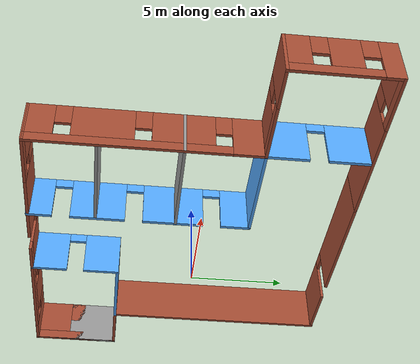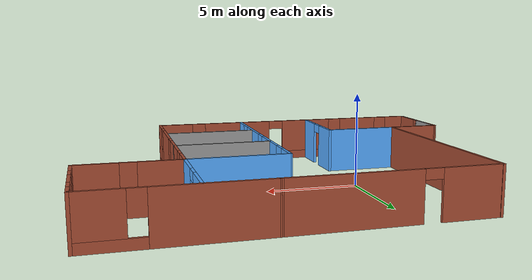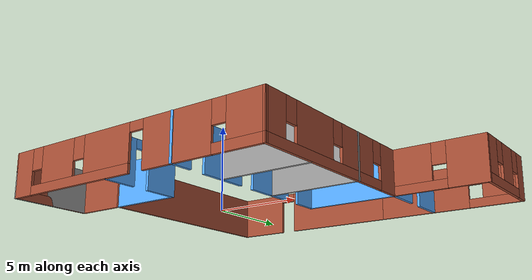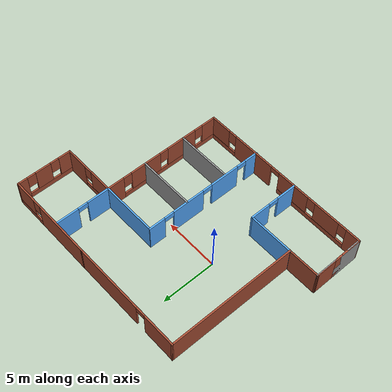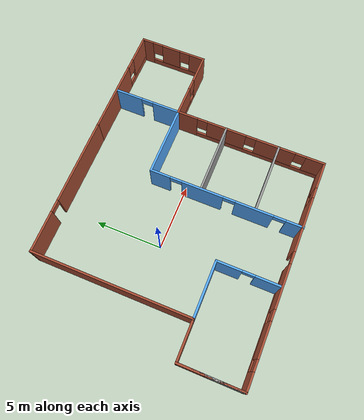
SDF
<?xml version='1.0'?>
<sdf version='1.6'>
  <model name='building'>
    <pose frame=''>3.89946 -0.587341 0 0 -0 0</pose>
    <link name='Wall_1'>
      <collision name='Wall_1_Collision'>
        <geometry>
          <box>
            <size>11.8964 0.15 2.5</size>
          </box>
        </geometry>
        <pose frame=''>0 0 1.25 0 -0 0</pose>
      </collision>
      <visual name='Wall_1_Visual'>
        <pose frame=''>0 0 1.25 0 -0 0</pose>
        <geometry>
          <box>
            <size>11.8964 0.15 2.5</size>
          </box>
        </geometry>
        <material>
          <script>
            <uri>file://media/materials/scripts/gazebo.material</uri>
            <name>Gazebo/Bricks</name>
          </script>
          <ambient>1 1 1 1</ambient>
        </material>
        <meta>
          <layer>0</layer>
        </meta>
      </visual>
      <pose frame=''>-7.94064 2.34108 0 0 0 -1.56889</pose>
    </link>
    <link name='Wall_12'>
      <pose frame=''>-2.75136 8.21079 0 0 0 -3.13796</pose>
      <visual name='Wall_12_Visual_0'>
        <pose frame=''>-1.99782 0 1.25 0 -0 0</pose>
        <geometry>
          <box>
            <size>6.55539 0.15 2.5</size>
          </box>
        </geometry>
        <material>
          <script>
            <uri>file://media/materials/scripts/gazebo.material</uri>
            <name>Gazebo/Bricks</name>
          </script>
          <ambient>1 1 1 1</ambient>
        </material>
        <meta>
          <layer>0</layer>
        </meta>
      </visual>
      <collision name='Wall_12_Collision_0'>
        <geometry>
          <box>
            <size>6.55539 0.15 2.5</size>
          </box>
        </geometry>
        <pose frame=''>-1.99782 0 1.25 0 -0 0</pose>
      </collision>
      <visual name='Wall_12_Visual_1'>
        <pose frame=''>3.72769 0 1.25 0 -0 0</pose>
        <geometry>
          <box>
            <size>3.09565 0.15 2.5</size>
          </box>
        </geometry>
        <material>
          <script>
            <uri>file://media/materials/scripts/gazebo.material</uri>
            <name>Gazebo/Bricks</name>
          </script>
          <ambient>1 1 1 1</ambient>
        </material>
        <meta>
          <layer>0</layer>
        </meta>
      </visual>
      <collision name='Wall_12_Collision_1'>
        <geometry>
          <box>
            <size>3.09565 0.15 2.5</size>
          </box>
        </geometry>
        <pose frame=''>3.72769 0 1.25 0 -0 0</pose>
      </collision>
      <visual name='Wall_12_Visual_2'>
        <pose frame=''>1.72987 0 2.25 0 -0 0</pose>
        <geometry>
          <box>
            <size>0.9 0.15 0.5</size>
          </box>
        </geometry>
        <material>
          <script>
            <uri>file://media/materials/scripts/gazebo.material</uri>
            <name>Gazebo/Bricks</name>
          </script>
          <ambient>1 1 1 1</ambient>
        </material>
        <meta>
          <layer>0</layer>
        </meta>
      </visual>
      <collision name='Wall_12_Collision_2'>
        <geometry>
          <box>
            <size>0.9 0.15 0.5</size>
          </box>
        </geometry>
        <pose frame=''>1.72987 0 2.25 0 -0 0</pose>
      </collision>
    </link>
    <link name='Wall_16'>
      <pose frame=''>6.62409 8.22968 0 0 -0 0</pose>
      <visual name='Wall_16_Visual_0'>
        <pose frame=''>-1.51306 0 1.25 0 -0 0</pose>
        <geometry>
          <box>
            <size>5.47388 0.15 2.5</size>
          </box>
        </geometry>
        <material>
          <script>
            <uri>file://media/materials/scripts/gazebo.material</uri>
            <name>Gazebo/Bricks</name>
          </script>
          <ambient>1 1 1 1</ambient>
        </material>
        <meta>
          <layer>0</layer>
        </meta>
      </visual>
      <collision name='Wall_16_Collision_0'>
        <geometry>
          <box>
            <size>5.47388 0.15 2.5</size>
          </box>
        </geometry>
        <pose frame=''>-1.51306 0 1.25 0 -0 0</pose>
      </collision>
      <visual name='Wall_16_Visual_1'>
        <pose frame=''>2.73694 0 0.25 0 -0 0</pose>
        <geometry>
          <box>
            <size>3.02612 0.15 0.5</size>
          </box>
        </geometry>
        <material>
          <script>
            <uri>file://media/materials/scripts/gazebo.material</uri>
            <name>Gazebo/Bricks</name>
          </script>
          <ambient>1 1 1 1</ambient>
        </material>
        <meta>
          <layer>0</layer>
        </meta>
      </visual>
      <collision name='Wall_16_Collision_1'>
        <geometry>
          <box>
            <size>3.02612 0.15 0.5</size>
          </box>
        </geometry>
        <pose frame=''>2.73694 0 0.25 0 -0 0</pose>
      </collision>
      <visual name='Wall_16_Visual_2'>
        <pose frame=''>3.13694 0 1.5 0 -0 0</pose>
        <geometry>
          <box>
            <size>2.22612 0.15 2</size>
          </box>
        </geometry>
        <material>
          <script>
            <uri>file://media/materials/scripts/gazebo.material</uri>
            <name>Gazebo/Bricks</name>
          </script>
          <ambient>1 1 1 1</ambient>
        </material>
        <meta>
          <layer>0</layer>
        </meta>
      </visual>
      <collision name='Wall_16_Collision_2'>
        <geometry>
          <box>
            <size>2.22612 0.15 2</size>
          </box>
        </geometry>
        <pose frame=''>3.13694 0 1.5 0 -0 0</pose>
      </collision>
      <visual name='Wall_16_Visual_3'>
        <pose frame=''>1.62388 0 1.9 0 -0 0</pose>
        <geometry>
          <box>
            <size>0.8 0.15 1.2</size>
          </box>
        </geometry>
        <material>
          <script>
            <uri>file://media/materials/scripts/gazebo.material</uri>
            <name>Gazebo/Bricks</name>
          </script>
          <ambient>1 1 1 1</ambient>
        </material>
        <meta>
          <layer>0</layer>
        </meta>
      </visual>
      <collision name='Wall_16_Collision_3'>
        <geometry>
          <box>
            <size>0.8 0.15 1.2</size>
          </box>
        </geometry>
        <pose frame=''>1.62388 0 1.9 0 -0 0</pose>
      </collision>
    </link>
    <link name='Wall_17'>
      <pose frame=''>10.7991 5.67968 0 0 0 -1.5708</pose>
      <visual name='Wall_17_Visual_0'>
        <pose frame=''>-2.16263 0 1.25 0 -0 0</pose>
        <geometry>
          <box>
            <size>0.924747 0.15 2.5</size>
          </box>
        </geometry>
        <material>
          <script>
            <uri>file://media/materials/scripts/gazebo.material</uri>
            <name>Gazebo/Bricks</name>
          </script>
          <ambient>1 1 1 1</ambient>
        </material>
        <meta>
          <layer>0</layer>
        </meta>
      </visual>
      <collision name='Wall_17_Collision_0'>
        <geometry>
          <box>
            <size>0.924747 0.15 2.5</size>
          </box>
        </geometry>
        <pose frame=''>-2.16263 0 1.25 0 -0 0</pose>
      </collision>
      <visual name='Wall_17_Visual_1'>
        <pose frame=''>0.462374 0 0.25 0 -0 0</pose>
        <geometry>
          <box>
            <size>4.32525 0.15 0.5</size>
          </box>
        </geometry>
        <material>
          <script>
            <uri>file://media/materials/scripts/gazebo.material</uri>
            <name>Gazebo/Bricks</name>
          </script>
          <ambient>1 1 1 1</ambient>
        </material>
        <meta>
          <layer>0</layer>
        </meta>
      </visual>
      <collision name='Wall_17_Collision_1'>
        <geometry>
          <box>
            <size>4.32525 0.15 0.5</size>
          </box>
        </geometry>
        <pose frame=''>0.462374 0 0.25 0 -0 0</pose>
      </collision>
      <visual name='Wall_17_Visual_2'>
        <pose frame=''>-0.159998 0 1.5 0 -0 0</pose>
        <geometry>
          <box>
            <size>1.48051 0.15 2</size>
          </box>
        </geometry>
        <material>
          <script>
            <uri>file://media/materials/scripts/gazebo.material</uri>
            <name>Gazebo/Bricks</name>
          </script>
          <ambient>1 1 1 1</ambient>
        </material>
        <meta>
          <layer>0</layer>
        </meta>
      </visual>
      <collision name='Wall_17_Collision_2'>
        <geometry>
          <box>
            <size>1.48051 0.15 2</size>
          </box>
        </geometry>
        <pose frame=''>-0.159998 0 1.5 0 -0 0</pose>
      </collision>
      <visual name='Wall_17_Visual_3'>
        <pose frame=''>2.00263 0 1.5 0 -0 0</pose>
        <geometry>
          <box>
            <size>1.24474 0.15 2</size>
          </box>
        </geometry>
        <material>
          <script>
            <uri>file://media/materials/scripts/gazebo.material</uri>
            <name>Gazebo/Bricks</name>
          </script>
          <ambient>1 1 1 1</ambient>
        </material>
        <meta>
          <layer>0</layer>
        </meta>
      </visual>
      <collision name='Wall_17_Collision_3'>
        <geometry>
          <box>
            <size>1.24474 0.15 2</size>
          </box>
        </geometry>
        <pose frame=''>2.00263 0 1.5 0 -0 0</pose>
      </collision>
      <visual name='Wall_17_Visual_4'>
        <pose frame=''>-1.30025 0 1.9 0 -0 0</pose>
        <geometry>
          <box>
            <size>0.8 0.15 1.2</size>
          </box>
        </geometry>
        <material>
          <script>
            <uri>file://media/materials/scripts/gazebo.material</uri>
            <name>Gazebo/Bricks</name>
          </script>
          <ambient>1 1 1 1</ambient>
        </material>
        <meta>
          <layer>0</layer>
        </meta>
      </visual>
      <collision name='Wall_17_Collision_4'>
        <geometry>
          <box>
            <size>0.8 0.15 1.2</size>
          </box>
        </geometry>
        <pose frame=''>-1.30025 0 1.9 0 -0 0</pose>
      </collision>
      <visual name='Wall_17_Visual_5'>
        <pose frame=''>0.980257 0 1.9 0 -0 0</pose>
        <geometry>
          <box>
            <size>0.8 0.15 1.2</size>
          </box>
        </geometry>
        <material>
          <script>
            <uri>file://media/materials/scripts/gazebo.material</uri>
            <name>Gazebo/Bricks</name>
          </script>
          <ambient>1 1 1 1</ambient>
        </material>
        <meta>
          <layer>0</layer>
        </meta>
      </visual>
      <collision name='Wall_17_Collision_5'>
        <geometry>
          <box>
            <size>0.8 0.15 1.2</size>
          </box>
        </geometry>
        <pose frame=''>0.980257 0 1.9 0 -0 0</pose>
      </collision>
    </link>
    <link name='Wall_18'>
      <pose frame=''>8.24932 3.12951 0 0 0 -3.14153</pose>
      <visual name='Wall_18_Visual_0'>
        <pose frame=''>-1.5343 0 1.25 0 -0 0</pose>
        <geometry>
          <box>
            <size>2.18141 0.15 2.5</size>
          </box>
        </geometry>
        <material>
          <script>
            <uri>file://media/materials/scripts/gazebo.material</uri>
            <name>Gazebo/Bricks</name>
          </script>
          <ambient>1 1 1 1</ambient>
        </material>
        <meta>
          <layer>0</layer>
        </meta>
      </visual>
      <collision name='Wall_18_Collision_0'>
        <geometry>
          <box>
            <size>2.18141 0.15 2.5</size>
          </box>
        </geometry>
        <pose frame=''>-1.5343 0 1.25 0 -0 0</pose>
      </collision>
      <visual name='Wall_18_Visual_1'>
        <pose frame=''>1.0907 0 0.25 0 -0 0</pose>
        <geometry>
          <box>
            <size>3.06859 0.15 0.5</size>
          </box>
        </geometry>
        <material>
          <script>
            <uri>file://media/materials/scripts/gazebo.material</uri>
            <name>Gazebo/Bricks</name>
          </script>
          <ambient>1 1 1 1</ambient>
        </material>
        <meta>
          <layer>0</layer>
        </meta>
      </visual>
      <collision name='Wall_18_Collision_1'>
        <geometry>
          <box>
            <size>3.06859 0.15 0.5</size>
          </box>
        </geometry>
        <pose frame=''>1.0907 0 0.25 0 -0 0</pose>
      </collision>
      <visual name='Wall_18_Visual_2'>
        <pose frame=''>1.4907 0 1.5 0 -0 0</pose>
        <geometry>
          <box>
            <size>2.26859 0.15 2</size>
          </box>
        </geometry>
        <material>
          <script>
            <uri>file://media/materials/scripts/gazebo.material</uri>
            <name>Gazebo/Bricks</name>
          </script>
          <ambient>1 1 1 1</ambient>
        </material>
        <meta>
          <layer>0</layer>
        </meta>
      </visual>
      <collision name='Wall_18_Collision_2'>
        <geometry>
          <box>
            <size>2.26859 0.15 2</size>
          </box>
        </geometry>
        <pose frame=''>1.4907 0 1.5 0 -0 0</pose>
      </collision>
      <visual name='Wall_18_Visual_3'>
        <pose frame=''>-0.043591 0 1.9 0 -0 0</pose>
        <geometry>
          <box>
            <size>0.8 0.15 1.2</size>
          </box>
        </geometry>
        <material>
          <script>
            <uri>file://media/materials/scripts/gazebo.material</uri>
            <name>Gazebo/Bricks</name>
          </script>
          <ambient>1 1 1 1</ambient>
        </material>
        <meta>
          <layer>0</layer>
        </meta>
      </visual>
      <collision name='Wall_18_Collision_3'>
        <geometry>
          <box>
            <size>0.8 0.15 1.2</size>
          </box>
        </geometry>
        <pose frame=''>-0.043591 0 1.9 0 -0 0</pose>
      </collision>
    </link>
    <link name='Wall_19'>
      <pose frame=''>5.69932 -2.54549 0 0 0 -1.57084</pose>
      <visual name='Wall_19_Visual_0'>
        <pose frame=''>-4.93786 0 1.25 0 -0 0</pose>
        <geometry>
          <box>
            <size>1.62428 0.15 2.5</size>
          </box>
        </geometry>
        <material>
          <script>
            <uri>file://media/materials/scripts/gazebo.material</uri>
            <name>Gazebo/Bricks</name>
          </script>
          <ambient>1 1 1 1</ambient>
        </material>
        <meta>
          <layer>0</layer>
        </meta>
      </visual>
      <collision name='Wall_19_Collision_0'>
        <geometry>
          <box>
            <size>1.62428 0.15 2.5</size>
          </box>
        </geometry>
        <pose frame=''>-4.93786 0 1.25 0 -0 0</pose>
      </collision>
      <visual name='Wall_19_Visual_1'>
        <pose frame=''>0.812141 0 0.25 0 -0 0</pose>
        <geometry>
          <box>
            <size>9.87572 0.15 0.5</size>
          </box>
        </geometry>
        <material>
          <script>
            <uri>file://media/materials/scripts/gazebo.material</uri>
            <name>Gazebo/Bricks</name>
          </script>
          <ambient>1 1 1 1</ambient>
        </material>
        <meta>
          <layer>0</layer>
        </meta>
      </visual>
      <collision name='Wall_19_Collision_1'>
        <geometry>
          <box>
            <size>9.87572 0.15 0.5</size>
          </box>
        </geometry>
        <pose frame=''>0.812141 0 0.25 0 -0 0</pose>
      </collision>
      <visual name='Wall_19_Visual_2'>
        <pose frame=''>-1.81026 0 1.5 0 -0 0</pose>
        <geometry>
          <box>
            <size>3.03092 0.15 2</size>
          </box>
        </geometry>
        <material>
          <script>
            <uri>file://media/materials/scripts/gazebo.material</uri>
            <name>Gazebo/Bricks</name>
          </script>
          <ambient>1 1 1 1</ambient>
        </material>
        <meta>
          <layer>0</layer>
        </meta>
      </visual>
      <collision name='Wall_19_Collision_2'>
        <geometry>
          <box>
            <size>3.03092 0.15 2</size>
          </box>
        </geometry>
        <pose frame=''>-1.81026 0 1.5 0 -0 0</pose>
      </collision>
      <visual name='Wall_19_Visual_3'>
        <pose frame=''>2.0078 0 1.5 0 -0 0</pose>
        <geometry>
          <box>
            <size>3.00521 0.15 2</size>
          </box>
        </geometry>
        <material>
          <script>
            <uri>file://media/materials/scripts/gazebo.material</uri>
            <name>Gazebo/Bricks</name>
          </script>
          <ambient>1 1 1 1</ambient>
        </material>
        <meta>
          <layer>0</layer>
        </meta>
      </visual>
      <collision name='Wall_19_Collision_3'>
        <geometry>
          <box>
            <size>3.00521 0.15 2</size>
          </box>
        </geometry>
        <pose frame=''>2.0078 0 1.5 0 -0 0</pose>
      </collision>
      <visual name='Wall_19_Visual_4'>
        <pose frame=''>5.0302 0 1.5 0 -0 0</pose>
        <geometry>
          <box>
            <size>1.43959 0.15 2</size>
          </box>
        </geometry>
        <material>
          <script>
            <uri>file://media/materials/scripts/gazebo.material</uri>
            <name>Gazebo/Bricks</name>
          </script>
          <ambient>1 1 1 1</ambient>
        </material>
        <meta>
          <layer>0</layer>
        </meta>
      </visual>
      <collision name='Wall_19_Collision_4'>
        <geometry>
          <box>
            <size>1.43959 0.15 2</size>
          </box>
        </geometry>
        <pose frame=''>5.0302 0 1.5 0 -0 0</pose>
      </collision>
      <visual name='Wall_19_Visual_5'>
        <pose frame=''>-3.72572 0 1.9 0 -0 0</pose>
        <geometry>
          <box>
            <size>0.8 0.15 1.2</size>
          </box>
        </geometry>
        <material>
          <script>
            <uri>file://media/materials/scripts/gazebo.material</uri>
            <name>Gazebo/Bricks</name>
          </script>
          <ambient>1 1 1 1</ambient>
        </material>
        <meta>
          <layer>0</layer>
        </meta>
      </visual>
      <collision name='Wall_19_Collision_5'>
        <geometry>
          <box>
            <size>0.8 0.15 1.2</size>
          </box>
        </geometry>
        <pose frame=''>-3.72572 0 1.9 0 -0 0</pose>
      </collision>
      <visual name='Wall_19_Visual_6'>
        <pose frame=''>0.105201 0 1.9 0 -0 0</pose>
        <geometry>
          <box>
            <size>0.8 0.15 1.2</size>
          </box>
        </geometry>
        <material>
          <script>
            <uri>file://media/materials/scripts/gazebo.material</uri>
            <name>Gazebo/Bricks</name>
          </script>
          <ambient>1 1 1 1</ambient>
        </material>
        <meta>
          <layer>0</layer>
        </meta>
      </visual>
      <collision name='Wall_19_Collision_6'>
        <geometry>
          <box>
            <size>0.8 0.15 1.2</size>
          </box>
        </geometry>
        <pose frame=''>0.105201 0 1.9 0 -0 0</pose>
      </collision>
      <visual name='Wall_19_Visual_7'>
        <pose frame=''>3.91041 0 1.9 0 -0 0</pose>
        <geometry>
          <box>
            <size>0.8 0.15 1.2</size>
          </box>
        </geometry>
        <material>
          <script>
            <uri>file://media/materials/scripts/gazebo.material</uri>
            <name>Gazebo/Bricks</name>
          </script>
          <ambient>1 1 1 1</ambient>
        </material>
        <meta>
          <layer>0</layer>
        </meta>
      </visual>
      <collision name='Wall_19_Collision_7'>
        <geometry>
          <box>
            <size>0.8 0.15 1.2</size>
          </box>
        </geometry>
        <pose frame=''>3.91041 0 1.9 0 -0 0</pose>
      </collision>
    </link>
    <link name='Wall_2'>
      <collision name='Wall_2_Collision'>
        <geometry>
          <box>
            <size>3 0.15 2.5</size>
          </box>
        </geometry>
        <pose frame=''>0 0 1.25 0 -0 0</pose>
      </collision>
      <visual name='Wall_2_Visual'>
        <pose frame=''>0 0 1.25 0 -0 0</pose>
        <geometry>
          <box>
            <size>3 0.15 2.5</size>
          </box>
        </geometry>
        <material>
          <script>
            <uri>file://media/materials/scripts/gazebo.material</uri>
            <name>Gazebo/Bricks</name>
          </script>
          <ambient>1 1 1 1</ambient>
        </material>
        <meta>
          <layer>0</layer>
        </meta>
      </visual>
      <pose frame=''>-9.3739 -3.5321 0 0 -0 3.14159</pose>
    </link>
    <link name='Wall_22'>
      <pose frame=''>-2.53692 -8.17313 0 0 0 -0.005729</pose>
      <visual name='Wall_22_Visual_0'>
        <pose frame=''>-7.62682 0 1.25 0 -0 0</pose>
        <geometry>
          <box>
            <size>1.36865 0.15 2.5</size>
          </box>
        </geometry>
        <material>
          <script>
            <uri>file://media/materials/scripts/gazebo.material</uri>
            <name>Gazebo/Bricks</name>
          </script>
          <ambient>1 1 1 1</ambient>
        </material>
        <meta>
          <layer>0</layer>
        </meta>
      </visual>
      <collision name='Wall_22_Collision_0'>
        <geometry>
          <box>
            <size>1.36865 0.15 2.5</size>
          </box>
        </geometry>
        <pose frame=''>-7.62682 0 1.25 0 -0 0</pose>
      </collision>
      <visual name='Wall_22_Visual_1'>
        <pose frame=''>3.33344 0 1.25 0 -0 0</pose>
        <geometry>
          <box>
            <size>4.17211 0.15 2.5</size>
          </box>
        </geometry>
        <material>
          <script>
            <uri>file://media/materials/scripts/gazebo.material</uri>
            <name>Gazebo/Bricks</name>
          </script>
          <ambient>1 1 1 1</ambient>
        </material>
        <meta>
          <layer>0</layer>
        </meta>
      </visual>
      <collision name='Wall_22_Collision_1'>
        <geometry>
          <box>
            <size>4.17211 0.15 2.5</size>
          </box>
        </geometry>
        <pose frame=''>3.33344 0 1.25 0 -0 0</pose>
      </collision>
      <visual name='Wall_22_Visual_2'>
        <pose frame=''>-3.29755 0 0.25 0 -0 0</pose>
        <geometry>
          <box>
            <size>7.28989 0.15 0.5</size>
          </box>
        </geometry>
        <material>
          <script>
            <uri>file://media/materials/scripts/gazebo.material</uri>
            <name>Gazebo/Bricks</name>
          </script>
          <ambient>1 1 1 1</ambient>
        </material>
        <meta>
          <layer>0</layer>
        </meta>
      </visual>
      <collision name='Wall_22_Collision_2'>
        <geometry>
          <box>
            <size>7.28989 0.15 0.5</size>
          </box>
        </geometry>
        <pose frame=''>-3.29755 0 0.25 0 -0 0</pose>
      </collision>
      <visual name='Wall_22_Visual_3'>
        <pose frame=''>6.86532 0 0.25 0 -0 0</pose>
        <geometry>
          <box>
            <size>2.89165 0.15 0.5</size>
          </box>
        </geometry>
        <material>
          <script>
            <uri>file://media/materials/scripts/gazebo.material</uri>
            <name>Gazebo/Bricks</name>
          </script>
          <ambient>1 1 1 1</ambient>
        </material>
        <meta>
          <layer>0</layer>
        </meta>
      </visual>
      <collision name='Wall_22_Collision_3'>
        <geometry>
          <box>
            <size>2.89165 0.15 0.5</size>
          </box>
        </geometry>
        <pose frame=''>6.86532 0 0.25 0 -0 0</pose>
      </collision>
      <visual name='Wall_22_Visual_4'>
        <pose frame=''>-4.89902 0 1.5 0 -0 0</pose>
        <geometry>
          <box>
            <size>2.48695 0.15 2</size>
          </box>
        </geometry>
        <material>
          <script>
            <uri>file://media/materials/scripts/gazebo.material</uri>
            <name>Gazebo/Bricks</name>
          </script>
          <ambient>1 1 1 1</ambient>
        </material>
        <meta>
          <layer>0</layer>
        </meta>
      </visual>
      <collision name='Wall_22_Collision_4'>
        <geometry>
          <box>
            <size>2.48695 0.15 2</size>
          </box>
        </geometry>
        <pose frame=''>-4.89902 0 1.5 0 -0 0</pose>
      </collision>
      <visual name='Wall_22_Visual_5'>
        <pose frame=''>-1.25408 0 1.5 0 -0 0</pose>
        <geometry>
          <box>
            <size>3.20294 0.15 2</size>
          </box>
        </geometry>
        <material>
          <script>
            <uri>file://media/materials/scripts/gazebo.material</uri>
            <name>Gazebo/Bricks</name>
          </script>
          <ambient>1 1 1 1</ambient>
        </material>
        <meta>
          <layer>0</layer>
        </meta>
      </visual>
      <collision name='Wall_22_Collision_5'>
        <geometry>
          <box>
            <size>3.20294 0.15 2</size>
          </box>
        </geometry>
        <pose frame=''>-1.25408 0 1.5 0 -0 0</pose>
      </collision>
      <visual name='Wall_22_Visual_6'>
        <pose frame=''>-1.25408 0 1.5 0 -0 0</pose>
        <geometry>
          <box>
            <size>3.20294 0.15 2</size>
          </box>
        </geometry>
        <material>
          <script>
            <uri>file://media/materials/scripts/gazebo.material</uri>
            <name>Gazebo/Bricks</name>
          </script>
          <ambient>1 1 1 1</ambient>
        </material>
        <meta>
          <layer>0</layer>
        </meta>
      </visual>
      <collision name='Wall_22_Collision_6'>
        <geometry>
          <box>
            <size>3.20294 0.15 2</size>
          </box>
        </geometry>
        <pose frame=''>-1.25408 0 1.5 0 -0 0</pose>
      </collision>
      <visual name='Wall_22_Visual_7'>
        <pose frame=''>7.26532 0 1.5 0 -0 0</pose>
        <geometry>
          <box>
            <size>2.09165 0.15 2</size>
          </box>
        </geometry>
        <material>
          <script>
            <uri>file://media/materials/scripts/gazebo.material</uri>
            <name>Gazebo/Bricks</name>
          </script>
          <ambient>1 1 1 1</ambient>
        </material>
        <meta>
          <layer>0</layer>
        </meta>
      </visual>
      <collision name='Wall_22_Collision_7'>
        <geometry>
          <box>
            <size>2.09165 0.15 2</size>
          </box>
        </geometry>
        <pose frame=''>7.26532 0 1.5 0 -0 0</pose>
      </collision>
      <visual name='Wall_22_Visual_8'>
        <pose frame=''>-6.5425 0 1.9 0 -0 0</pose>
        <geometry>
          <box>
            <size>0.8 0.15 1.2</size>
          </box>
        </geometry>
        <material>
          <script>
            <uri>file://media/materials/scripts/gazebo.material</uri>
            <name>Gazebo/Bricks</name>
          </script>
          <ambient>1 1 1 1</ambient>
        </material>
        <meta>
          <layer>0</layer>
        </meta>
      </visual>
      <collision name='Wall_22_Collision_8'>
        <geometry>
          <box>
            <size>0.8 0.15 1.2</size>
          </box>
        </geometry>
        <pose frame=''>-6.5425 0 1.9 0 -0 0</pose>
      </collision>
      <visual name='Wall_22_Visual_9'>
        <pose frame=''>5.8195 0 1.9 0 -0 0</pose>
        <geometry>
          <box>
            <size>0.8 0.15 1.2</size>
          </box>
        </geometry>
        <material>
          <script>
            <uri>file://media/materials/scripts/gazebo.material</uri>
            <name>Gazebo/Bricks</name>
          </script>
          <ambient>1 1 1 1</ambient>
        </material>
        <meta>
          <layer>0</layer>
        </meta>
      </visual>
      <collision name='Wall_22_Collision_9'>
        <geometry>
          <box>
            <size>0.8 0.15 1.2</size>
          </box>
        </geometry>
        <pose frame=''>5.8195 0 1.9 0 -0 0</pose>
      </collision>
      <visual name='Wall_22_Visual_10'>
        <pose frame=''>-3.25555 0 1.9 0 -0 0</pose>
        <geometry>
          <box>
            <size>0.8 0.15 1.2</size>
          </box>
        </geometry>
        <material>
          <script>
            <uri>file://media/materials/scripts/gazebo.material</uri>
            <name>Gazebo/Bricks</name>
          </script>
          <ambient>1 1 1 1</ambient>
        </material>
        <meta>
          <layer>0</layer>
        </meta>
      </visual>
      <collision name='Wall_22_Collision_10'>
        <geometry>
          <box>
            <size>0.8 0.15 1.2</size>
          </box>
        </geometry>
        <pose frame=''>-3.25555 0 1.9 0 -0 0</pose>
      </collision>
      <visual name='Wall_22_Visual_11'>
        <pose frame=''>0.79739 0 2.25 0 -0 0</pose>
        <geometry>
          <box>
            <size>0.9 0.15 0.5</size>
          </box>
        </geometry>
        <material>
          <script>
            <uri>file://media/materials/scripts/gazebo.material</uri>
            <name>Gazebo/Bricks</name>
          </script>
          <ambient>1 1 1 1</ambient>
        </material>
        <meta>
          <layer>0</layer>
        </meta>
      </visual>
      <collision name='Wall_22_Collision_11'>
        <geometry>
          <box>
            <size>0.9 0.15 0.5</size>
          </box>
        </geometry>
        <pose frame=''>0.79739 0 2.25 0 -0 0</pose>
      </collision>
      <visual name='Wall_22_Visual_12'>
        <pose frame=''>0.79739 0 2.25 0 -0 0</pose>
        <geometry>
          <box>
            <size>0.9 0.15 0.5</size>
          </box>
        </geometry>
        <material>
          <script>
            <uri>file://media/materials/scripts/gazebo.material</uri>
            <name>Gazebo/Bricks</name>
          </script>
          <ambient>1 1 1 1</ambient>
        </material>
        <meta>
          <layer>0</layer>
        </meta>
      </visual>
      <collision name='Wall_22_Collision_12'>
        <geometry>
          <box>
            <size>0.9 0.15 0.5</size>
          </box>
        </geometry>
        <pose frame=''>0.79739 0 2.25 0 -0 0</pose>
      </collision>
    </link>
    <link name='Wall_24'>
      <collision name='Wall_24_Collision'>
        <geometry>
          <box>
            <size>4.25 0.15 2.5</size>
          </box>
        </geometry>
        <pose frame=''>0 0 1.25 0 -0 0</pose>
      </collision>
      <visual name='Wall_24_Visual'>
        <pose frame=''>0 0 1.25 0 -0 0</pose>
        <geometry>
          <box>
            <size>4.25 0.15 2.5</size>
          </box>
        </geometry>
        <material>
          <script>
            <uri>file://media/materials/scripts/gazebo.material</uri>
            <name>Gazebo/Grey</name>
          </script>
          <ambient>0.333333 0.666667 1 1</ambient>
        </material>
        <meta>
          <layer>0</layer>
        </meta>
      </visual>
      <pose frame=''>-5.8989 -3.5321 0 0 -0 3.14159</pose>
    </link>
    <link name='Wall_26'>
      <pose frame=''>-3.8489 -5.8321 0 0 0 -1.5708</pose>
      <visual name='Wall_26_Visual_0'>
        <pose frame=''>-1.41297 0 1.25 0 -0 0</pose>
        <geometry>
          <box>
            <size>1.92407 0.15 2.5</size>
          </box>
        </geometry>
        <material>
          <script>
            <uri>file://media/materials/scripts/gazebo.material</uri>
            <name>Gazebo/Grey</name>
          </script>
          <ambient>0.333333 0.666667 1 1</ambient>
        </material>
        <meta>
          <layer>0</layer>
        </meta>
      </visual>
      <collision name='Wall_26_Collision_0'>
        <geometry>
          <box>
            <size>1.92407 0.15 2.5</size>
          </box>
        </geometry>
        <pose frame=''>-1.41297 0 1.25 0 -0 0</pose>
      </collision>
      <visual name='Wall_26_Visual_1'>
        <pose frame=''>1.41203 0 1.25 0 -0 0</pose>
        <geometry>
          <box>
            <size>1.92593 0.15 2.5</size>
          </box>
        </geometry>
        <material>
          <script>
            <uri>file://media/materials/scripts/gazebo.material</uri>
            <name>Gazebo/Grey</name>
          </script>
          <ambient>0.333333 0.666667 1 1</ambient>
        </material>
        <meta>
          <layer>0</layer>
        </meta>
      </visual>
      <collision name='Wall_26_Collision_1'>
        <geometry>
          <box>
            <size>1.92593 0.15 2.5</size>
          </box>
        </geometry>
        <pose frame=''>1.41203 0 1.25 0 -0 0</pose>
      </collision>
      <visual name='Wall_26_Visual_2'>
        <pose frame=''>-0.000932 0 2.25 0 -0 0</pose>
        <geometry>
          <box>
            <size>0.9 0.15 0.5</size>
          </box>
        </geometry>
        <material>
          <script>
            <uri>file://media/materials/scripts/gazebo.material</uri>
            <name>Gazebo/Grey</name>
          </script>
          <ambient>0.333333 0.666667 1 1</ambient>
        </material>
        <meta>
          <layer>0</layer>
        </meta>
      </visual>
      <collision name='Wall_26_Collision_2'>
        <geometry>
          <box>
            <size>0.9 0.15 0.5</size>
          </box>
        </geometry>
        <pose frame=''>-0.000932 0 2.25 0 -0 0</pose>
      </collision>
    </link>
    <link name='Wall_29'>
      <pose frame=''>5.69954 5.67934 0 0 -0 1.5708</pose>
      <visual name='Wall_29_Visual_0'>
        <pose frame=''>-1.54693 0 1.25 0 -0 0</pose>
        <geometry>
          <box>
            <size>2.15613 0.15 2.5</size>
          </box>
        </geometry>
        <material>
          <script>
            <uri>file://media/materials/scripts/gazebo.material</uri>
            <name>Gazebo/Grey</name>
          </script>
          <ambient>0.333333 0.666667 1 1</ambient>
        </material>
        <meta>
          <layer>0</layer>
        </meta>
      </visual>
      <collision name='Wall_29_Collision_0'>
        <geometry>
          <box>
            <size>2.15613 0.15 2.5</size>
          </box>
        </geometry>
        <pose frame=''>-1.54693 0 1.25 0 -0 0</pose>
      </collision>
      <visual name='Wall_29_Visual_1'>
        <pose frame=''>1.52807 0 1.25 0 -0 0</pose>
        <geometry>
          <box>
            <size>2.19387 0.15 2.5</size>
          </box>
        </geometry>
        <material>
          <script>
            <uri>file://media/materials/scripts/gazebo.material</uri>
            <name>Gazebo/Grey</name>
          </script>
          <ambient>0.333333 0.666667 1 1</ambient>
        </material>
        <meta>
          <layer>0</layer>
        </meta>
      </visual>
      <collision name='Wall_29_Collision_1'>
        <geometry>
          <box>
            <size>2.19387 0.15 2.5</size>
          </box>
        </geometry>
        <pose frame=''>1.52807 0 1.25 0 -0 0</pose>
      </collision>
      <visual name='Wall_29_Visual_2'>
        <pose frame=''>-0.018866 0 2.25 0 -0 0</pose>
        <geometry>
          <box>
            <size>0.9 0.15 0.5</size>
          </box>
        </geometry>
        <material>
          <script>
            <uri>file://media/materials/scripts/gazebo.material</uri>
            <name>Gazebo/Grey</name>
          </script>
          <ambient>0.333333 0.666667 1 1</ambient>
        </material>
        <meta>
          <layer>0</layer>
        </meta>
      </visual>
      <collision name='Wall_29_Collision_2'>
        <geometry>
          <box>
            <size>0.9 0.15 0.5</size>
          </box>
        </geometry>
        <pose frame=''>-0.018866 0 2.25 0 -0 0</pose>
      </collision>
    </link>
    <link name='Wall_33'>
      <pose frame=''>0.558093 -2.55495 0 0 -0 1.5708</pose>
      <visual name='Wall_33_Visual_0'>
        <pose frame=''>-5.08902 0 1.25 0 -0 0</pose>
        <geometry>
          <box>
            <size>1.32197 0.15 2.5</size>
          </box>
        </geometry>
        <material>
          <script>
            <uri>file://media/materials/scripts/gazebo.material</uri>
            <name>Gazebo/Grey</name>
          </script>
          <ambient>0.333333 0.666667 1 1</ambient>
        </material>
        <meta>
          <layer>0</layer>
        </meta>
      </visual>
      <collision name='Wall_33_Collision_0'>
        <geometry>
          <box>
            <size>1.32197 0.15 2.5</size>
          </box>
        </geometry>
        <pose frame=''>-5.08902 0 1.25 0 -0 0</pose>
      </collision>
      <visual name='Wall_33_Visual_1'>
        <pose frame=''>-2.12679 0 1.25 0 -0 0</pose>
        <geometry>
          <box>
            <size>2.80247 0.15 2.5</size>
          </box>
        </geometry>
        <material>
          <script>
            <uri>file://media/materials/scripts/gazebo.material</uri>
            <name>Gazebo/Grey</name>
          </script>
          <ambient>0.333333 0.666667 1 1</ambient>
        </material>
        <meta>
          <layer>0</layer>
        </meta>
      </visual>
      <collision name='Wall_33_Collision_1'>
        <geometry>
          <box>
            <size>2.80247 0.15 2.5</size>
          </box>
        </geometry>
        <pose frame=''>-2.12679 0 1.25 0 -0 0</pose>
      </collision>
      <visual name='Wall_33_Visual_2'>
        <pose frame=''>1.72995 0 1.25 0 -0 0</pose>
        <geometry>
          <box>
            <size>3.11102 0.15 2.5</size>
          </box>
        </geometry>
        <material>
          <script>
            <uri>file://media/materials/scripts/gazebo.material</uri>
            <name>Gazebo/Grey</name>
          </script>
          <ambient>0.333333 0.666667 1 1</ambient>
        </material>
        <meta>
          <layer>0</layer>
        </meta>
      </visual>
      <collision name='Wall_33_Collision_2'>
        <geometry>
          <box>
            <size>3.11102 0.15 2.5</size>
          </box>
        </geometry>
        <pose frame=''>1.72995 0 1.25 0 -0 0</pose>
      </collision>
      <visual name='Wall_33_Visual_3'>
        <pose frame=''>4.96773 0 1.25 0 -0 0</pose>
        <geometry>
          <box>
            <size>1.56454 0.15 2.5</size>
          </box>
        </geometry>
        <material>
          <script>
            <uri>file://media/materials/scripts/gazebo.material</uri>
            <name>Gazebo/Grey</name>
          </script>
          <ambient>0.333333 0.666667 1 1</ambient>
        </material>
        <meta>
          <layer>0</layer>
        </meta>
      </visual>
      <collision name='Wall_33_Collision_3'>
        <geometry>
          <box>
            <size>1.56454 0.15 2.5</size>
          </box>
        </geometry>
        <pose frame=''>4.96773 0 1.25 0 -0 0</pose>
      </collision>
      <visual name='Wall_33_Visual_4'>
        <pose frame=''>-3.97803 0 2.25 0 -0 0</pose>
        <geometry>
          <box>
            <size>0.9 0.15 0.5</size>
          </box>
        </geometry>
        <material>
          <script>
            <uri>file://media/materials/scripts/gazebo.material</uri>
            <name>Gazebo/Grey</name>
          </script>
          <ambient>0.333333 0.666667 1 1</ambient>
        </material>
        <meta>
          <layer>0</layer>
        </meta>
      </visual>
      <collision name='Wall_33_Collision_4'>
        <geometry>
          <box>
            <size>0.9 0.15 0.5</size>
          </box>
        </geometry>
        <pose frame=''>-3.97803 0 2.25 0 -0 0</pose>
      </collision>
      <visual name='Wall_33_Visual_5'>
        <pose frame=''>-0.275557 0 2.25 0 -0 0</pose>
        <geometry>
          <box>
            <size>0.9 0.15 0.5</size>
          </box>
        </geometry>
        <material>
          <script>
            <uri>file://media/materials/scripts/gazebo.material</uri>
            <name>Gazebo/Grey</name>
          </script>
          <ambient>0.333333 0.666667 1 1</ambient>
        </material>
        <meta>
          <layer>0</layer>
        </meta>
      </visual>
      <collision name='Wall_33_Collision_5'>
        <geometry>
          <box>
            <size>0.9 0.15 0.5</size>
          </box>
        </geometry>
        <pose frame=''>-0.275557 0 2.25 0 -0 0</pose>
      </collision>
      <visual name='Wall_33_Visual_6'>
        <pose frame=''>3.73546 0 2.25 0 -0 0</pose>
        <geometry>
          <box>
            <size>0.9 0.15 0.5</size>
          </box>
        </geometry>
        <material>
          <script>
            <uri>file://media/materials/scripts/gazebo.material</uri>
            <name>Gazebo/Grey</name>
          </script>
          <ambient>0.333333 0.666667 1 1</ambient>
        </material>
        <meta>
          <layer>0</layer>
        </meta>
      </visual>
      <collision name='Wall_33_Collision_6'>
        <geometry>
          <box>
            <size>0.9 0.15 0.5</size>
          </box>
        </geometry>
        <pose frame=''>3.73546 0 2.25 0 -0 0</pose>
      </collision>
    </link>
    <link name='Wall_34'>
      <collision name='Wall_34_Collision'>
        <geometry>
          <box>
            <size>5.29101 0.15 2.5</size>
          </box>
        </geometry>
        <pose frame=''>0 0 1.25 0 -0 0</pose>
      </collision>
      <visual name='Wall_34_Visual'>
        <pose frame=''>0 0 1.25 0 -0 0</pose>
        <geometry>
          <box>
            <size>5.29101 0.15 2.5</size>
          </box>
        </geometry>
        <material>
          <script>
            <uri>file://media/materials/scripts/gazebo.material</uri>
            <name>Gazebo/Grey</name>
          </script>
          <ambient>0.333333 0.666667 1 1</ambient>
        </material>
        <meta>
          <layer>0</layer>
        </meta>
      </visual>
      <pose frame=''>3.12882 3.1247 0 0 -0 0.001807</pose>
    </link>
    <link name='Wall_36'>
      <collision name='Wall_36_Collision'>
        <geometry>
          <box>
            <size>5.25 0.15 2.5</size>
          </box>
        </geometry>
        <pose frame=''>0 0 1.25 0 -0 0</pose>
      </collision>
      <visual name='Wall_36_Visual'>
        <pose frame=''>0 0 1.25 0 -0 0</pose>
        <geometry>
          <box>
            <size>5.25 0.15 2.5</size>
          </box>
        </geometry>
        <material>
          <script>
            <uri>file://media/materials/scripts/gazebo.material</uri>
            <name>Gazebo/Grey</name>
          </script>
          <ambient>1 1 1 1</ambient>
        </material>
        <meta>
          <layer>0</layer>
        </meta>
      </visual>
      <pose frame=''>3.15952 -0.696442 0 0 -0 0</pose>
    </link>
    <link name='Wall_38'>
      <collision name='Wall_38_Collision'>
        <geometry>
          <box>
            <size>5.25 0.15 2.5</size>
          </box>
        </geometry>
        <pose frame=''>0 0 1.25 0 -0 0</pose>
      </collision>
      <visual name='Wall_38_Visual'>
        <pose frame=''>0 0 1.25 0 -0 0</pose>
        <geometry>
          <box>
            <size>5.25 0.15 2.5</size>
          </box>
        </geometry>
        <material>
          <script>
            <uri>file://media/materials/scripts/gazebo.material</uri>
            <name>Gazebo/Grey</name>
          </script>
          <ambient>1 1 1 1</ambient>
        </material>
        <meta>
          <layer>0</layer>
        </meta>
      </visual>
      <pose frame=''>3.13381 -4.78459 0 0 -0 0</pose>
    </link>
    <link name='Wall_5'>
      <collision name='Wall_5_Collision'>
        <geometry>
          <box>
            <size>4.74392 0.15 2.5</size>
          </box>
        </geometry>
        <pose frame=''>0 0 1.25 0 -0 0</pose>
      </collision>
      <visual name='Wall_5_Visual'>
        <pose frame=''>0 0 1.25 0 -0 0</pose>
        <geometry>
          <box>
            <size>4.74392 0.15 2.5</size>
          </box>
        </geometry>
        <material>
          <script>
            <uri>file://media/materials/scripts/gazebo.material</uri>
            <name>Gazebo/Grey</name>
          </script>
          <ambient>1 1 1 1</ambient>
        </material>
        <meta>
          <layer>0</layer>
        </meta>
      </visual>
      <pose frame=''>-10.7859 -5.82902 0 0 -0 1.57645</pose>
    </link>
    <link name='Wall_6'>
      <pose frame=''>-10.7859 -5.82902 0 0 0 -1.56514</pose>
      <visual name='Wall_6_Visual_0'>
        <pose frame=''>-1.38533 0 1.25 0 -0 0</pose>
        <geometry>
          <box>
            <size>1.97326 0.15 2.5</size>
          </box>
        </geometry>
        <material>
          <script>
            <uri>file://media/materials/scripts/gazebo.material</uri>
            <name>Gazebo/Bricks</name>
          </script>
          <ambient>1 1 1 1</ambient>
        </material>
        <meta>
          <layer>0</layer>
        </meta>
      </visual>
      <collision name='Wall_6_Collision_0'>
        <geometry>
          <box>
            <size>1.97326 0.15 2.5</size>
          </box>
        </geometry>
        <pose frame=''>-1.38533 0 1.25 0 -0 0</pose>
      </collision>
      <visual name='Wall_6_Visual_1'>
        <pose frame=''>0.986631 0 0.25 0 -0 0</pose>
        <geometry>
          <box>
            <size>2.77066 0.15 0.5</size>
          </box>
        </geometry>
        <material>
          <script>
            <uri>file://media/materials/scripts/gazebo.material</uri>
            <name>Gazebo/Bricks</name>
          </script>
          <ambient>1 1 1 1</ambient>
        </material>
        <meta>
          <layer>0</layer>
        </meta>
      </visual>
      <collision name='Wall_6_Collision_1'>
        <geometry>
          <box>
            <size>2.77066 0.15 0.5</size>
          </box>
        </geometry>
        <pose frame=''>0.986631 0 0.25 0 -0 0</pose>
      </collision>
      <visual name='Wall_6_Visual_2'>
        <pose frame=''>1.38663 0 1.5 0 -0 0</pose>
        <geometry>
          <box>
            <size>1.97066 0.15 2</size>
          </box>
        </geometry>
        <material>
          <script>
            <uri>file://media/materials/scripts/gazebo.material</uri>
            <name>Gazebo/Bricks</name>
          </script>
          <ambient>1 1 1 1</ambient>
        </material>
        <meta>
          <layer>0</layer>
        </meta>
      </visual>
      <collision name='Wall_6_Collision_2'>
        <geometry>
          <box>
            <size>1.97066 0.15 2</size>
          </box>
        </geometry>
        <pose frame=''>1.38663 0 1.5 0 -0 0</pose>
      </collision>
      <visual name='Wall_6_Visual_3'>
        <pose frame=''>0.001303 0 1.9 0 -0 0</pose>
        <geometry>
          <box>
            <size>0.8 0.15 1.2</size>
          </box>
        </geometry>
        <material>
          <script>
            <uri>file://media/materials/scripts/gazebo.material</uri>
            <name>Gazebo/Bricks</name>
          </script>
          <ambient>1 1 1 1</ambient>
        </material>
        <meta>
          <layer>0</layer>
        </meta>
      </visual>
      <collision name='Wall_6_Collision_3'>
        <geometry>
          <box>
            <size>0.8 0.15 1.2</size>
          </box>
        </geometry>
        <pose frame=''>0.001303 0 1.9 0 -0 0</pose>
      </collision>
    </link>
    <static>1</static>
  </model>
</sdf>
